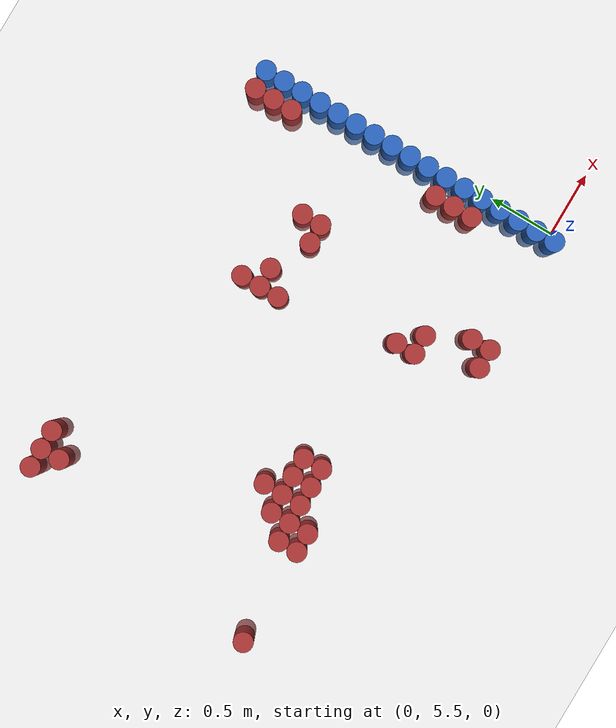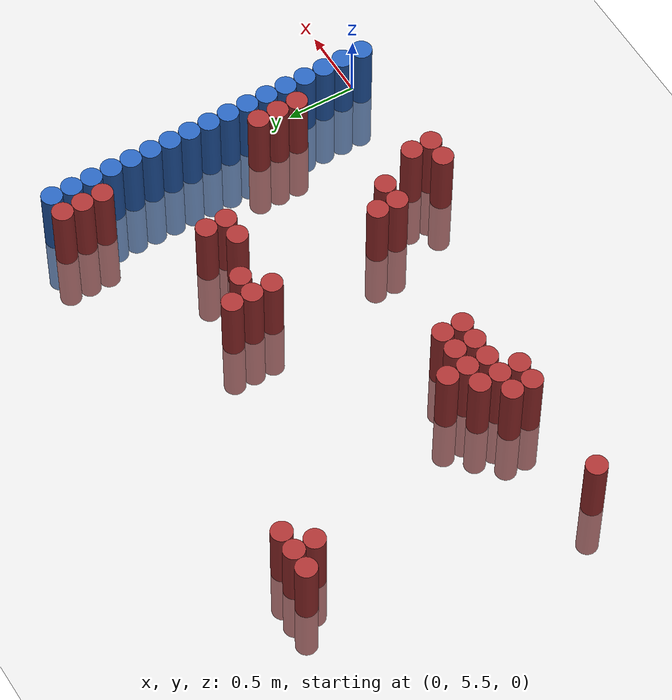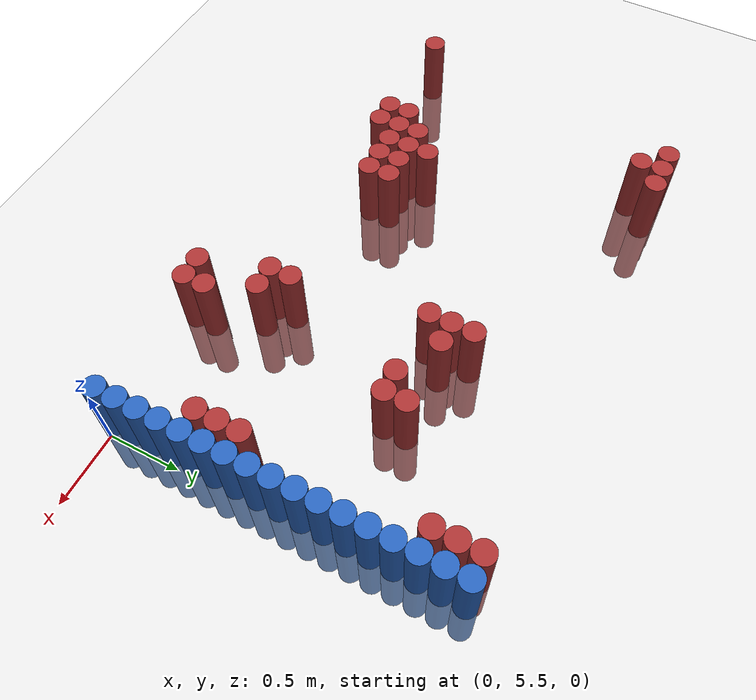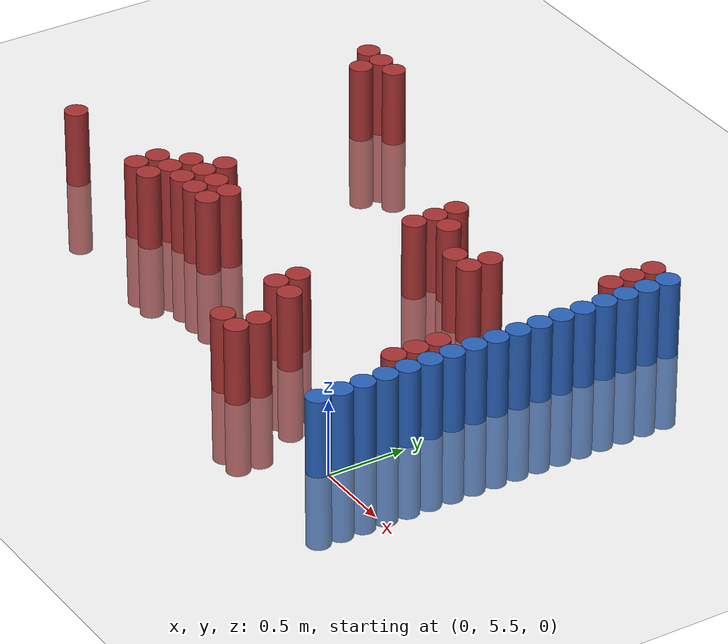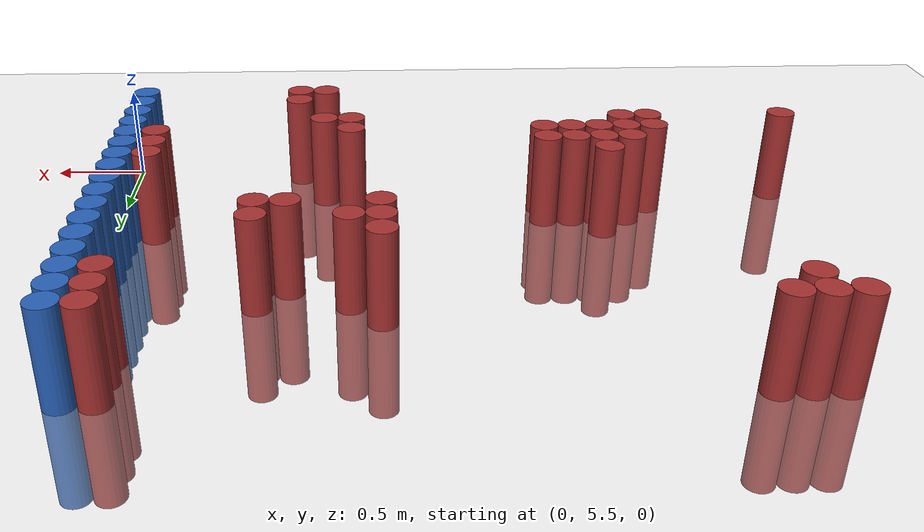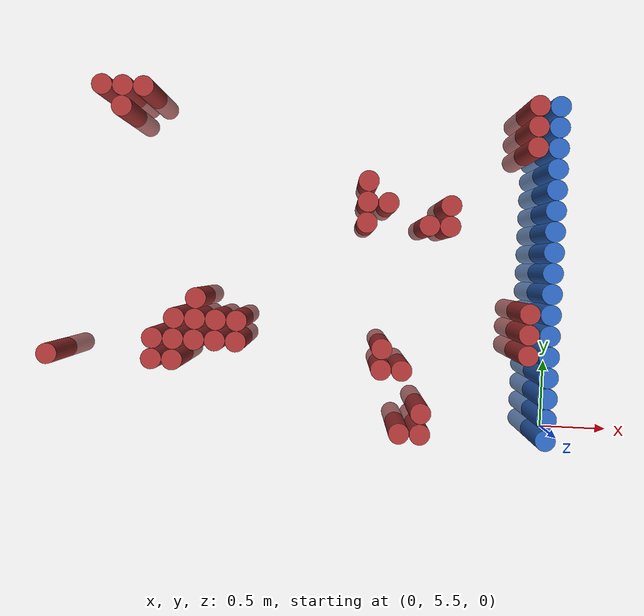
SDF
<sdf version="1.6">
 <world name="default">
  <model name="ground_plane">
   <static>1</static>
   <link name="link">
    <collision name="collision">
     <geometry><plane><normal>0 0 1</normal><size>100 100</size></plane></geometry>
     <surface><friction><ode><mu>100</mu><mu2>50</mu2></ode></friction></surface>
    </collision>
    <visual name="visual">
     <cast_shadows>0</cast_shadows>
     <geometry><plane><normal>0 0 1</normal><size>100 100</size></plane></geometry>
     <material>
      <script><uri>file://media/materials/scripts/gazebo.material</uri><name>Gazebo/Grey</name></script>
     </material>
    </visual>
   </link>
  </model>
  <model name="unit_cylinder_156">
   <static>1</static>
   <pose>-3.675000 5.925000 0.000000 0.000000 0.000000 0.000000</pose>
   <link name="link">
    <inertial>
     <mass>1</mass>
     <inertia><ixx>0.145833</ixx><ixy>0</ixy><ixz>0</ixz><iyy>0.145833</iyy><iyz>0</iyz><izz>0.125</izz></inertia>
    </inertial>
    <collision name="collision">
     <geometry><cylinder><radius>0.075000</radius><length>1</length></cylinder></geometry>
    </collision>
    <visual name="visual">
     <geometry><cylinder><radius>0.075000</radius><length>1</length></cylinder></geometry>
     <material>
      <ambient>0.648000 0.192000 0.192000 1</ambient>
      <diffuse>0.648000 0.192000 0.192000 1</diffuse>
     </material>
     <material>
      <script><name>Gazebo/Grey</name><uri>file://media/materials/scripts/gazebo.material</uri></script>
     </material>
    </visual>
   </link>
  </model>
  <model name="unit_cylinder_159">
   <static>1</static>
   <pose>-3.375000 7.875000 0.000000 0.000000 0.000000 0.000000</pose>
   <link name="link">
    <inertial>
     <mass>1</mass>
     <inertia><ixx>0.145833</ixx><ixy>0</ixy><ixz>0</ixz><iyy>0.145833</iyy><iyz>0</iyz><izz>0.125</izz></inertia>
    </inertial>
    <collision name="collision">
     <geometry><cylinder><radius>0.075000</radius><length>1</length></cylinder></geometry>
    </collision>
    <visual name="visual">
     <geometry><cylinder><radius>0.075000</radius><length>1</length></cylinder></geometry>
     <material>
      <ambient>0.648000 0.192000 0.192000 1</ambient>
      <diffuse>0.648000 0.192000 0.192000 1</diffuse>
     </material>
     <material>
      <script><name>Gazebo/Grey</name><uri>file://media/materials/scripts/gazebo.material</uri></script>
     </material>
    </visual>
   </link>
  </model>
  <model name="unit_cylinder_166">
   <static>1</static>
   <pose>-3.225000 7.725000 0.000000 0.000000 0.000000 0.000000</pose>
   <link name="link">
    <inertial>
     <mass>1</mass>
     <inertia><ixx>0.145833</ixx><ixy>0</ixy><ixz>0</ixz><iyy>0.145833</iyy><iyz>0</iyz><izz>0.125</izz></inertia>
    </inertial>
    <collision name="collision">
     <geometry><cylinder><radius>0.075000</radius><length>1</length></cylinder></geometry>
    </collision>
    <visual name="visual">
     <geometry><cylinder><radius>0.075000</radius><length>1</length></cylinder></geometry>
     <material>
      <ambient>0.648000 0.192000 0.192000 1</ambient>
      <diffuse>0.648000 0.192000 0.192000 1</diffuse>
     </material>
     <material>
      <script><name>Gazebo/Grey</name><uri>file://media/materials/scripts/gazebo.material</uri></script>
     </material>
    </visual>
   </link>
  </model>
  <model name="unit_cylinder_167">
   <static>1</static>
   <pose>-3.225000 7.875000 0.000000 0.000000 0.000000 0.000000</pose>
   <link name="link">
    <inertial>
     <mass>1</mass>
     <inertia><ixx>0.145833</ixx><ixy>0</ixy><ixz>0</ixz><iyy>0.145833</iyy><iyz>0</iyz><izz>0.125</izz></inertia>
    </inertial>
    <collision name="collision">
     <geometry><cylinder><radius>0.075000</radius><length>1</length></cylinder></geometry>
    </collision>
    <visual name="visual">
     <geometry><cylinder><radius>0.075000</radius><length>1</length></cylinder></geometry>
     <material>
      <ambient>0.648000 0.192000 0.192000 1</ambient>
      <diffuse>0.648000 0.192000 0.192000 1</diffuse>
     </material>
     <material>
      <script><name>Gazebo/Grey</name><uri>file://media/materials/scripts/gazebo.material</uri></script>
     </material>
    </visual>
   </link>
  </model>
  <model name="unit_cylinder_173">
   <static>1</static>
   <pose>-3.075000 7.875000 0.000000 0.000000 0.000000 0.000000</pose>
   <link name="link">
    <inertial>
     <mass>1</mass>
     <inertia><ixx>0.145833</ixx><ixy>0</ixy><ixz>0</ixz><iyy>0.145833</iyy><iyz>0</iyz><izz>0.125</izz></inertia>
    </inertial>
    <collision name="collision">
     <geometry><cylinder><radius>0.075000</radius><length>1</length></cylinder></geometry>
    </collision>
    <visual name="visual">
     <geometry><cylinder><radius>0.075000</radius><length>1</length></cylinder></geometry>
     <material>
      <ambient>0.648000 0.192000 0.192000 1</ambient>
      <diffuse>0.648000 0.192000 0.192000 1</diffuse>
     </material>
     <material>
      <script><name>Gazebo/Grey</name><uri>file://media/materials/scripts/gazebo.material</uri></script>
     </material>
    </visual>
   </link>
  </model>
  <model name="unit_cylinder_176">
   <static>1</static>
   <pose>-2.925000 5.925000 0.000000 0.000000 0.000000 0.000000</pose>
   <link name="link">
    <inertial>
     <mass>1</mass>
     <inertia><ixx>0.145833</ixx><ixy>0</ixy><ixz>0</ixz><iyy>0.145833</iyy><iyz>0</iyz><izz>0.125</izz></inertia>
    </inertial>
    <collision name="collision">
     <geometry><cylinder><radius>0.075000</radius><length>1</length></cylinder></geometry>
    </collision>
    <visual name="visual">
     <geometry><cylinder><radius>0.075000</radius><length>1</length></cylinder></geometry>
     <material>
      <ambient>0.648000 0.192000 0.192000 1</ambient>
      <diffuse>0.648000 0.192000 0.192000 1</diffuse>
     </material>
     <material>
      <script><name>Gazebo/Grey</name><uri>file://media/materials/scripts/gazebo.material</uri></script>
     </material>
    </visual>
   </link>
  </model>
  <model name="unit_cylinder_177">
   <static>1</static>
   <pose>-2.925000 6.075000 0.000000 0.000000 0.000000 0.000000</pose>
   <link name="link">
    <inertial>
     <mass>1</mass>
     <inertia><ixx>0.145833</ixx><ixy>0</ixy><ixz>0</ixz><iyy>0.145833</iyy><iyz>0</iyz><izz>0.125</izz></inertia>
    </inertial>
    <collision name="collision">
     <geometry><cylinder><radius>0.075000</radius><length>1</length></cylinder></geometry>
    </collision>
    <visual name="visual">
     <geometry><cylinder><radius>0.075000</radius><length>1</length></cylinder></geometry>
     <material>
      <ambient>0.648000 0.192000 0.192000 1</ambient>
      <diffuse>0.648000 0.192000 0.192000 1</diffuse>
     </material>
     <material>
      <script><name>Gazebo/Grey</name><uri>file://media/materials/scripts/gazebo.material</uri></script>
     </material>
    </visual>
   </link>
  </model>
  <model name="unit_cylinder_180">
   <static>1</static>
   <pose>-2.775000 5.925000 0.000000 0.000000 0.000000 0.000000</pose>
   <link name="link">
    <inertial>
     <mass>1</mass>
     <inertia><ixx>0.145833</ixx><ixy>0</ixy><ixz>0</ixz><iyy>0.145833</iyy><iyz>0</iyz><izz>0.125</izz></inertia>
    </inertial>
    <collision name="collision">
     <geometry><cylinder><radius>0.075000</radius><length>1</length></cylinder></geometry>
    </collision>
    <visual name="visual">
     <geometry><cylinder><radius>0.075000</radius><length>1</length></cylinder></geometry>
     <material>
      <ambient>0.648000 0.192000 0.192000 1</ambient>
      <diffuse>0.648000 0.192000 0.192000 1</diffuse>
     </material>
     <material>
      <script><name>Gazebo/Grey</name><uri>file://media/materials/scripts/gazebo.material</uri></script>
     </material>
    </visual>
   </link>
  </model>
  <model name="unit_cylinder_181">
   <static>1</static>
   <pose>-2.775000 6.075000 0.000000 0.000000 0.000000 0.000000</pose>
   <link name="link">
    <inertial>
     <mass>1</mass>
     <inertia><ixx>0.145833</ixx><ixy>0</ixy><ixz>0</ixz><iyy>0.145833</iyy><iyz>0</iyz><izz>0.125</izz></inertia>
    </inertial>
    <collision name="collision">
     <geometry><cylinder><radius>0.075000</radius><length>1</length></cylinder></geometry>
    </collision>
    <visual name="visual">
     <geometry><cylinder><radius>0.075000</radius><length>1</length></cylinder></geometry>
     <material>
      <ambient>0.648000 0.192000 0.192000 1</ambient>
      <diffuse>0.648000 0.192000 0.192000 1</diffuse>
     </material>
     <material>
      <script><name>Gazebo/Grey</name><uri>file://media/materials/scripts/gazebo.material</uri></script>
     </material>
    </visual>
   </link>
  </model>
  <model name="unit_cylinder_182">
   <static>1</static>
   <pose>-2.775000 6.225000 0.000000 0.000000 0.000000 0.000000</pose>
   <link name="link">
    <inertial>
     <mass>1</mass>
     <inertia><ixx>0.145833</ixx><ixy>0</ixy><ixz>0</ixz><iyy>0.145833</iyy><iyz>0</iyz><izz>0.125</izz></inertia>
    </inertial>
    <collision name="collision">
     <geometry><cylinder><radius>0.075000</radius><length>1</length></cylinder></geometry>
    </collision>
    <visual name="visual">
     <geometry><cylinder><radius>0.075000</radius><length>1</length></cylinder></geometry>
     <material>
      <ambient>0.648000 0.192000 0.192000 1</ambient>
      <diffuse>0.648000 0.192000 0.192000 1</diffuse>
     </material>
     <material>
      <script><name>Gazebo/Grey</name><uri>file://media/materials/scripts/gazebo.material</uri></script>
     </material>
    </visual>
   </link>
  </model>
  <model name="unit_cylinder_183">
   <static>1</static>
   <pose>-2.625000 6.075000 0.000000 0.000000 0.000000 0.000000</pose>
   <link name="link">
    <inertial>
     <mass>1</mass>
     <inertia><ixx>0.145833</ixx><ixy>0</ixy><ixz>0</ixz><iyy>0.145833</iyy><iyz>0</iyz><izz>0.125</izz></inertia>
    </inertial>
    <collision name="collision">
     <geometry><cylinder><radius>0.075000</radius><length>1</length></cylinder></geometry>
    </collision>
    <visual name="visual">
     <geometry><cylinder><radius>0.075000</radius><length>1</length></cylinder></geometry>
     <material>
      <ambient>0.648000 0.192000 0.192000 1</ambient>
      <diffuse>0.648000 0.192000 0.192000 1</diffuse>
     </material>
     <material>
      <script><name>Gazebo/Grey</name><uri>file://media/materials/scripts/gazebo.material</uri></script>
     </material>
    </visual>
   </link>
  </model>
  <model name="unit_cylinder_184">
   <static>1</static>
   <pose>-2.625000 6.225000 0.000000 0.000000 0.000000 0.000000</pose>
   <link name="link">
    <inertial>
     <mass>1</mass>
     <inertia><ixx>0.145833</ixx><ixy>0</ixy><ixz>0</ixz><iyy>0.145833</iyy><iyz>0</iyz><izz>0.125</izz></inertia>
    </inertial>
    <collision name="collision">
     <geometry><cylinder><radius>0.075000</radius><length>1</length></cylinder></geometry>
    </collision>
    <visual name="visual">
     <geometry><cylinder><radius>0.075000</radius><length>1</length></cylinder></geometry>
     <material>
      <ambient>0.648000 0.192000 0.192000 1</ambient>
      <diffuse>0.648000 0.192000 0.192000 1</diffuse>
     </material>
     <material>
      <script><name>Gazebo/Grey</name><uri>file://media/materials/scripts/gazebo.material</uri></script>
     </material>
    </visual>
   </link>
  </model>
  <model name="unit_cylinder_185">
   <static>1</static>
   <pose>-2.625000 6.375000 0.000000 0.000000 0.000000 0.000000</pose>
   <link name="link">
    <inertial>
     <mass>1</mass>
     <inertia><ixx>0.145833</ixx><ixy>0</ixy><ixz>0</ixz><iyy>0.145833</iyy><iyz>0</iyz><izz>0.125</izz></inertia>
    </inertial>
    <collision name="collision">
     <geometry><cylinder><radius>0.075000</radius><length>1</length></cylinder></geometry>
    </collision>
    <visual name="visual">
     <geometry><cylinder><radius>0.075000</radius><length>1</length></cylinder></geometry>
     <material>
      <ambient>0.648000 0.192000 0.192000 1</ambient>
      <diffuse>0.648000 0.192000 0.192000 1</diffuse>
     </material>
     <material>
      <script><name>Gazebo/Grey</name><uri>file://media/materials/scripts/gazebo.material</uri></script>
     </material>
    </visual>
   </link>
  </model>
  <model name="unit_cylinder_186">
   <static>1</static>
   <pose>-2.475000 6.075000 0.000000 0.000000 0.000000 0.000000</pose>
   <link name="link">
    <inertial>
     <mass>1</mass>
     <inertia><ixx>0.145833</ixx><ixy>0</ixy><ixz>0</ixz><iyy>0.145833</iyy><iyz>0</iyz><izz>0.125</izz></inertia>
    </inertial>
    <collision name="collision">
     <geometry><cylinder><radius>0.075000</radius><length>1</length></cylinder></geometry>
    </collision>
    <visual name="visual">
     <geometry><cylinder><radius>0.075000</radius><length>1</length></cylinder></geometry>
     <material>
      <ambient>0.648000 0.192000 0.192000 1</ambient>
      <diffuse>0.648000 0.192000 0.192000 1</diffuse>
     </material>
     <material>
      <script><name>Gazebo/Grey</name><uri>file://media/materials/scripts/gazebo.material</uri></script>
     </material>
    </visual>
   </link>
  </model>
  <model name="unit_cylinder_187">
   <static>1</static>
   <pose>-2.475000 6.225000 0.000000 0.000000 0.000000 0.000000</pose>
   <link name="link">
    <inertial>
     <mass>1</mass>
     <inertia><ixx>0.145833</ixx><ixy>0</ixy><ixz>0</ixz><iyy>0.145833</iyy><iyz>0</iyz><izz>0.125</izz></inertia>
    </inertial>
    <collision name="collision">
     <geometry><cylinder><radius>0.075000</radius><length>1</length></cylinder></geometry>
    </collision>
    <visual name="visual">
     <geometry><cylinder><radius>0.075000</radius><length>1</length></cylinder></geometry>
     <material>
      <ambient>0.648000 0.192000 0.192000 1</ambient>
      <diffuse>0.648000 0.192000 0.192000 1</diffuse>
     </material>
     <material>
      <script><name>Gazebo/Grey</name><uri>file://media/materials/scripts/gazebo.material</uri></script>
     </material>
    </visual>
   </link>
  </model>
  <model name="unit_cylinder_188">
   <static>1</static>
   <pose>-2.325000 6.075000 0.000000 0.000000 0.000000 0.000000</pose>
   <link name="link">
    <inertial>
     <mass>1</mass>
     <inertia><ixx>0.145833</ixx><ixy>0</ixy><ixz>0</ixz><iyy>0.145833</iyy><iyz>0</iyz><izz>0.125</izz></inertia>
    </inertial>
    <collision name="collision">
     <geometry><cylinder><radius>0.075000</radius><length>1</length></cylinder></geometry>
    </collision>
    <visual name="visual">
     <geometry><cylinder><radius>0.075000</radius><length>1</length></cylinder></geometry>
     <material>
      <ambient>0.648000 0.192000 0.192000 1</ambient>
      <diffuse>0.648000 0.192000 0.192000 1</diffuse>
     </material>
     <material>
      <script><name>Gazebo/Grey</name><uri>file://media/materials/scripts/gazebo.material</uri></script>
     </material>
    </visual>
   </link>
  </model>
  <model name="unit_cylinder_189">
   <static>1</static>
   <pose>-2.325000 6.225000 0.000000 0.000000 0.000000 0.000000</pose>
   <link name="link">
    <inertial>
     <mass>1</mass>
     <inertia><ixx>0.145833</ixx><ixy>0</ixy><ixz>0</ixz><iyy>0.145833</iyy><iyz>0</iyz><izz>0.125</izz></inertia>
    </inertial>
    <collision name="collision">
     <geometry><cylinder><radius>0.075000</radius><length>1</length></cylinder></geometry>
    </collision>
    <visual name="visual">
     <geometry><cylinder><radius>0.075000</radius><length>1</length></cylinder></geometry>
     <material>
      <ambient>0.648000 0.192000 0.192000 1</ambient>
      <diffuse>0.648000 0.192000 0.192000 1</diffuse>
     </material>
     <material>
      <script><name>Gazebo/Grey</name><uri>file://media/materials/scripts/gazebo.material</uri></script>
     </material>
    </visual>
   </link>
  </model>
  <model name="unit_cylinder_202">
   <static>1</static>
   <pose>-1.425000 6.975000 0.000000 0.000000 0.000000 0.000000</pose>
   <link name="link">
    <inertial>
     <mass>1</mass>
     <inertia><ixx>0.145833</ixx><ixy>0</ixy><ixz>0</ixz><iyy>0.145833</iyy><iyz>0</iyz><izz>0.125</izz></inertia>
    </inertial>
    <collision name="collision">
     <geometry><cylinder><radius>0.075000</radius><length>1</length></cylinder></geometry>
    </collision>
    <visual name="visual">
     <geometry><cylinder><radius>0.075000</radius><length>1</length></cylinder></geometry>
     <material>
      <ambient>0.648000 0.192000 0.192000 1</ambient>
      <diffuse>0.648000 0.192000 0.192000 1</diffuse>
     </material>
     <material>
      <script><name>Gazebo/Grey</name><uri>file://media/materials/scripts/gazebo.material</uri></script>
     </material>
    </visual>
   </link>
  </model>
  <model name="unit_cylinder_203">
   <static>1</static>
   <pose>-1.425000 7.125000 0.000000 0.000000 0.000000 0.000000</pose>
   <link name="link">
    <inertial>
     <mass>1</mass>
     <inertia><ixx>0.145833</ixx><ixy>0</ixy><ixz>0</ixz><iyy>0.145833</iyy><iyz>0</iyz><izz>0.125</izz></inertia>
    </inertial>
    <collision name="collision">
     <geometry><cylinder><radius>0.075000</radius><length>1</length></cylinder></geometry>
    </collision>
    <visual name="visual">
     <geometry><cylinder><radius>0.075000</radius><length>1</length></cylinder></geometry>
     <material>
      <ambient>0.648000 0.192000 0.192000 1</ambient>
      <diffuse>0.648000 0.192000 0.192000 1</diffuse>
     </material>
     <material>
      <script><name>Gazebo/Grey</name><uri>file://media/materials/scripts/gazebo.material</uri></script>
     </material>
    </visual>
   </link>
  </model>
  <model name="unit_cylinder_204">
   <static>1</static>
   <pose>-1.425000 7.275000 0.000000 0.000000 0.000000 0.000000</pose>
   <link name="link">
    <inertial>
     <mass>1</mass>
     <inertia><ixx>0.145833</ixx><ixy>0</ixy><ixz>0</ixz><iyy>0.145833</iyy><iyz>0</iyz><izz>0.125</izz></inertia>
    </inertial>
    <collision name="collision">
     <geometry><cylinder><radius>0.075000</radius><length>1</length></cylinder></geometry>
    </collision>
    <visual name="visual">
     <geometry><cylinder><radius>0.075000</radius><length>1</length></cylinder></geometry>
     <material>
      <ambient>0.648000 0.192000 0.192000 1</ambient>
      <diffuse>0.648000 0.192000 0.192000 1</diffuse>
     </material>
     <material>
      <script><name>Gazebo/Grey</name><uri>file://media/materials/scripts/gazebo.material</uri></script>
     </material>
    </visual>
   </link>
  </model>
  <model name="unit_cylinder_205">
   <static>1</static>
   <pose>-1.275000 5.925000 0.000000 0.000000 0.000000 0.000000</pose>
   <link name="link">
    <inertial>
     <mass>1</mass>
     <inertia><ixx>0.145833</ixx><ixy>0</ixy><ixz>0</ixz><iyy>0.145833</iyy><iyz>0</iyz><izz>0.125</izz></inertia>
    </inertial>
    <collision name="collision">
     <geometry><cylinder><radius>0.075000</radius><length>1</length></cylinder></geometry>
    </collision>
    <visual name="visual">
     <geometry><cylinder><radius>0.075000</radius><length>1</length></cylinder></geometry>
     <material>
      <ambient>0.648000 0.192000 0.192000 1</ambient>
      <diffuse>0.648000 0.192000 0.192000 1</diffuse>
     </material>
     <material>
      <script><name>Gazebo/Grey</name><uri>file://media/materials/scripts/gazebo.material</uri></script>
     </material>
    </visual>
   </link>
  </model>
  <model name="unit_cylinder_206">
   <static>1</static>
   <pose>-1.275000 6.075000 0.000000 0.000000 0.000000 0.000000</pose>
   <link name="link">
    <inertial>
     <mass>1</mass>
     <inertia><ixx>0.145833</ixx><ixy>0</ixy><ixz>0</ixz><iyy>0.145833</iyy><iyz>0</iyz><izz>0.125</izz></inertia>
    </inertial>
    <collision name="collision">
     <geometry><cylinder><radius>0.075000</radius><length>1</length></cylinder></geometry>
    </collision>
    <visual name="visual">
     <geometry><cylinder><radius>0.075000</radius><length>1</length></cylinder></geometry>
     <material>
      <ambient>0.648000 0.192000 0.192000 1</ambient>
      <diffuse>0.648000 0.192000 0.192000 1</diffuse>
     </material>
     <material>
      <script><name>Gazebo/Grey</name><uri>file://media/materials/scripts/gazebo.material</uri></script>
     </material>
    </visual>
   </link>
  </model>
  <model name="unit_cylinder_207">
   <static>1</static>
   <pose>-1.275000 7.125000 0.000000 0.000000 0.000000 0.000000</pose>
   <link name="link">
    <inertial>
     <mass>1</mass>
     <inertia><ixx>0.145833</ixx><ixy>0</ixy><ixz>0</ixz><iyy>0.145833</iyy><iyz>0</iyz><izz>0.125</izz></inertia>
    </inertial>
    <collision name="collision">
     <geometry><cylinder><radius>0.075000</radius><length>1</length></cylinder></geometry>
    </collision>
    <visual name="visual">
     <geometry><cylinder><radius>0.075000</radius><length>1</length></cylinder></geometry>
     <material>
      <ambient>0.648000 0.192000 0.192000 1</ambient>
      <diffuse>0.648000 0.192000 0.192000 1</diffuse>
     </material>
     <material>
      <script><name>Gazebo/Grey</name><uri>file://media/materials/scripts/gazebo.material</uri></script>
     </material>
    </visual>
   </link>
  </model>
  <model name="unit_cylinder_208">
   <static>1</static>
   <pose>-1.125000 5.475000 0.000000 0.000000 0.000000 0.000000</pose>
   <link name="link">
    <inertial>
     <mass>1</mass>
     <inertia><ixx>0.145833</ixx><ixy>0</ixy><ixz>0</ixz><iyy>0.145833</iyy><iyz>0</iyz><izz>0.125</izz></inertia>
    </inertial>
    <collision name="collision">
     <geometry><cylinder><radius>0.075000</radius><length>1</length></cylinder></geometry>
    </collision>
    <visual name="visual">
     <geometry><cylinder><radius>0.075000</radius><length>1</length></cylinder></geometry>
     <material>
      <ambient>0.648000 0.192000 0.192000 1</ambient>
      <diffuse>0.648000 0.192000 0.192000 1</diffuse>
     </material>
     <material>
      <script><name>Gazebo/Grey</name><uri>file://media/materials/scripts/gazebo.material</uri></script>
     </material>
    </visual>
   </link>
  </model>
  <model name="unit_cylinder_209">
   <static>1</static>
   <pose>-1.125000 5.925000 0.000000 0.000000 0.000000 0.000000</pose>
   <link name="link">
    <inertial>
     <mass>1</mass>
     <inertia><ixx>0.145833</ixx><ixy>0</ixy><ixz>0</ixz><iyy>0.145833</iyy><iyz>0</iyz><izz>0.125</izz></inertia>
    </inertial>
    <collision name="collision">
     <geometry><cylinder><radius>0.075000</radius><length>1</length></cylinder></geometry>
    </collision>
    <visual name="visual">
     <geometry><cylinder><radius>0.075000</radius><length>1</length></cylinder></geometry>
     <material>
      <ambient>0.648000 0.192000 0.192000 1</ambient>
      <diffuse>0.648000 0.192000 0.192000 1</diffuse>
     </material>
     <material>
      <script><name>Gazebo/Grey</name><uri>file://media/materials/scripts/gazebo.material</uri></script>
     </material>
    </visual>
   </link>
  </model>
  <model name="unit_cylinder_210">
   <static>1</static>
   <pose>-0.975000 5.475000 0.000000 0.000000 0.000000 0.000000</pose>
   <link name="link">
    <inertial>
     <mass>1</mass>
     <inertia><ixx>0.145833</ixx><ixy>0</ixy><ixz>0</ixz><iyy>0.145833</iyy><iyz>0</iyz><izz>0.125</izz></inertia>
    </inertial>
    <collision name="collision">
     <geometry><cylinder><radius>0.075000</radius><length>1</length></cylinder></geometry>
    </collision>
    <visual name="visual">
     <geometry><cylinder><radius>0.075000</radius><length>1</length></cylinder></geometry>
     <material>
      <ambient>0.648000 0.192000 0.192000 1</ambient>
      <diffuse>0.648000 0.192000 0.192000 1</diffuse>
     </material>
     <material>
      <script><name>Gazebo/Grey</name><uri>file://media/materials/scripts/gazebo.material</uri></script>
     </material>
    </visual>
   </link>
  </model>
  <model name="unit_cylinder_211">
   <static>1</static>
   <pose>-0.975000 5.625000 0.000000 0.000000 0.000000 0.000000</pose>
   <link name="link">
    <inertial>
     <mass>1</mass>
     <inertia><ixx>0.145833</ixx><ixy>0</ixy><ixz>0</ixz><iyy>0.145833</iyy><iyz>0</iyz><izz>0.125</izz></inertia>
    </inertial>
    <collision name="collision">
     <geometry><cylinder><radius>0.075000</radius><length>1</length></cylinder></geometry>
    </collision>
    <visual name="visual">
     <geometry><cylinder><radius>0.075000</radius><length>1</length></cylinder></geometry>
     <material>
      <ambient>0.648000 0.192000 0.192000 1</ambient>
      <diffuse>0.648000 0.192000 0.192000 1</diffuse>
     </material>
     <material>
      <script><name>Gazebo/Grey</name><uri>file://media/materials/scripts/gazebo.material</uri></script>
     </material>
    </visual>
   </link>
  </model>
  <model name="unit_cylinder_212">
   <static>1</static>
   <pose>-0.975000 6.975000 0.000000 0.000000 0.000000 0.000000</pose>
   <link name="link">
    <inertial>
     <mass>1</mass>
     <inertia><ixx>0.145833</ixx><ixy>0</ixy><ixz>0</ixz><iyy>0.145833</iyy><iyz>0</iyz><izz>0.125</izz></inertia>
    </inertial>
    <collision name="collision">
     <geometry><cylinder><radius>0.075000</radius><length>1</length></cylinder></geometry>
    </collision>
    <visual name="visual">
     <geometry><cylinder><radius>0.075000</radius><length>1</length></cylinder></geometry>
     <material>
      <ambient>0.648000 0.192000 0.192000 1</ambient>
      <diffuse>0.648000 0.192000 0.192000 1</diffuse>
     </material>
     <material>
      <script><name>Gazebo/Grey</name><uri>file://media/materials/scripts/gazebo.material</uri></script>
     </material>
    </visual>
   </link>
  </model>
  <model name="unit_cylinder_214">
   <static>1</static>
   <pose>-0.825000 6.975000 0.000000 0.000000 0.000000 0.000000</pose>
   <link name="link">
    <inertial>
     <mass>1</mass>
     <inertia><ixx>0.145833</ixx><ixy>0</ixy><ixz>0</ixz><iyy>0.145833</iyy><iyz>0</iyz><izz>0.125</izz></inertia>
    </inertial>
    <collision name="collision">
     <geometry><cylinder><radius>0.075000</radius><length>1</length></cylinder></geometry>
    </collision>
    <visual name="visual">
     <geometry><cylinder><radius>0.075000</radius><length>1</length></cylinder></geometry>
     <material>
      <ambient>0.648000 0.192000 0.192000 1</ambient>
      <diffuse>0.648000 0.192000 0.192000 1</diffuse>
     </material>
     <material>
      <script><name>Gazebo/Grey</name><uri>file://media/materials/scripts/gazebo.material</uri></script>
     </material>
    </visual>
   </link>
  </model>
  <model name="unit_cylinder_215">
   <static>1</static>
   <pose>-0.825000 7.125000 0.000000 0.000000 0.000000 0.000000</pose>
   <link name="link">
    <inertial>
     <mass>1</mass>
     <inertia><ixx>0.145833</ixx><ixy>0</ixy><ixz>0</ixz><iyy>0.145833</iyy><iyz>0</iyz><izz>0.125</izz></inertia>
    </inertial>
    <collision name="collision">
     <geometry><cylinder><radius>0.075000</radius><length>1</length></cylinder></geometry>
    </collision>
    <visual name="visual">
     <geometry><cylinder><radius>0.075000</radius><length>1</length></cylinder></geometry>
     <material>
      <ambient>0.648000 0.192000 0.192000 1</ambient>
      <diffuse>0.648000 0.192000 0.192000 1</diffuse>
     </material>
     <material>
      <script><name>Gazebo/Grey</name><uri>file://media/materials/scripts/gazebo.material</uri></script>
     </material>
    </visual>
   </link>
  </model>
  <model name="unit_cylinder_226">
   <static>1</static>
   <pose>-0.225000 6.075000 0.000000 0.000000 0.000000 0.000000</pose>
   <link name="link">
    <inertial>
     <mass>1</mass>
     <inertia><ixx>0.145833</ixx><ixy>0</ixy><ixz>0</ixz><iyy>0.145833</iyy><iyz>0</iyz><izz>0.125</izz></inertia>
    </inertial>
    <collision name="collision">
     <geometry><cylinder><radius>0.075000</radius><length>1</length></cylinder></geometry>
    </collision>
    <visual name="visual">
     <geometry><cylinder><radius>0.075000</radius><length>1</length></cylinder></geometry>
     <material>
      <ambient>0.648000 0.192000 0.192000 1</ambient>
      <diffuse>0.648000 0.192000 0.192000 1</diffuse>
     </material>
     <material>
      <script><name>Gazebo/Grey</name><uri>file://media/materials/scripts/gazebo.material</uri></script>
     </material>
    </visual>
   </link>
  </model>
  <model name="unit_cylinder_227">
   <static>1</static>
   <pose>-0.225000 6.225000 0.000000 0.000000 0.000000 0.000000</pose>
   <link name="link">
    <inertial>
     <mass>1</mass>
     <inertia><ixx>0.145833</ixx><ixy>0</ixy><ixz>0</ixz><iyy>0.145833</iyy><iyz>0</iyz><izz>0.125</izz></inertia>
    </inertial>
    <collision name="collision">
     <geometry><cylinder><radius>0.075000</radius><length>1</length></cylinder></geometry>
    </collision>
    <visual name="visual">
     <geometry><cylinder><radius>0.075000</radius><length>1</length></cylinder></geometry>
     <material>
      <ambient>0.648000 0.192000 0.192000 1</ambient>
      <diffuse>0.648000 0.192000 0.192000 1</diffuse>
     </material>
     <material>
      <script><name>Gazebo/Grey</name><uri>file://media/materials/scripts/gazebo.material</uri></script>
     </material>
    </visual>
   </link>
  </model>
  <model name="unit_cylinder_228">
   <static>1</static>
   <pose>-0.225000 6.375000 0.000000 0.000000 0.000000 0.000000</pose>
   <link name="link">
    <inertial>
     <mass>1</mass>
     <inertia><ixx>0.145833</ixx><ixy>0</ixy><ixz>0</ixz><iyy>0.145833</iyy><iyz>0</iyz><izz>0.125</izz></inertia>
    </inertial>
    <collision name="collision">
     <geometry><cylinder><radius>0.075000</radius><length>1</length></cylinder></geometry>
    </collision>
    <visual name="visual">
     <geometry><cylinder><radius>0.075000</radius><length>1</length></cylinder></geometry>
     <material>
      <ambient>0.648000 0.192000 0.192000 1</ambient>
      <diffuse>0.648000 0.192000 0.192000 1</diffuse>
     </material>
     <material>
      <script><name>Gazebo/Grey</name><uri>file://media/materials/scripts/gazebo.material</uri></script>
     </material>
    </visual>
   </link>
  </model>
  <model name="unit_cylinder_229">
   <static>1</static>
   <pose>-0.225000 7.575000 0.000000 0.000000 0.000000 0.000000</pose>
   <link name="link">
    <inertial>
     <mass>1</mass>
     <inertia><ixx>0.145833</ixx><ixy>0</ixy><ixz>0</ixz><iyy>0.145833</iyy><iyz>0</iyz><izz>0.125</izz></inertia>
    </inertial>
    <collision name="collision">
     <geometry><cylinder><radius>0.075000</radius><length>1</length></cylinder></geometry>
    </collision>
    <visual name="visual">
     <geometry><cylinder><radius>0.075000</radius><length>1</length></cylinder></geometry>
     <material>
      <ambient>0.648000 0.192000 0.192000 1</ambient>
      <diffuse>0.648000 0.192000 0.192000 1</diffuse>
     </material>
     <material>
      <script><name>Gazebo/Grey</name><uri>file://media/materials/scripts/gazebo.material</uri></script>
     </material>
    </visual>
   </link>
  </model>
  <model name="unit_cylinder_230">
   <static>1</static>
   <pose>-0.225000 7.725000 0.000000 0.000000 0.000000 0.000000</pose>
   <link name="link">
    <inertial>
     <mass>1</mass>
     <inertia><ixx>0.145833</ixx><ixy>0</ixy><ixz>0</ixz><iyy>0.145833</iyy><iyz>0</iyz><izz>0.125</izz></inertia>
    </inertial>
    <collision name="collision">
     <geometry><cylinder><radius>0.075000</radius><length>1</length></cylinder></geometry>
    </collision>
    <visual name="visual">
     <geometry><cylinder><radius>0.075000</radius><length>1</length></cylinder></geometry>
     <material>
      <ambient>0.648000 0.192000 0.192000 1</ambient>
      <diffuse>0.648000 0.192000 0.192000 1</diffuse>
     </material>
     <material>
      <script><name>Gazebo/Grey</name><uri>file://media/materials/scripts/gazebo.material</uri></script>
     </material>
    </visual>
   </link>
  </model>
  <model name="unit_cylinder_231">
   <static>1</static>
   <pose>-0.225000 7.875000 0.000000 0.000000 0.000000 0.000000</pose>
   <link name="link">
    <inertial>
     <mass>1</mass>
     <inertia><ixx>0.145833</ixx><ixy>0</ixy><ixz>0</ixz><iyy>0.145833</iyy><iyz>0</iyz><izz>0.125</izz></inertia>
    </inertial>
    <collision name="collision">
     <geometry><cylinder><radius>0.075000</radius><length>1</length></cylinder></geometry>
    </collision>
    <visual name="visual">
     <geometry><cylinder><radius>0.075000</radius><length>1</length></cylinder></geometry>
     <material>
      <ambient>0.648000 0.192000 0.192000 1</ambient>
      <diffuse>0.648000 0.192000 0.192000 1</diffuse>
     </material>
     <material>
      <script><name>Gazebo/Grey</name><uri>file://media/materials/scripts/gazebo.material</uri></script>
     </material>
    </visual>
   </link>
  </model>
  <model name="unit_cylinder_239">
   <static>1</static>
   <pose>-0.075000 5.475000 0.000000 0.000000 0.000000 0.000000</pose>
   <link name="link">
    <inertial>
     <mass>1</mass>
     <inertia><ixx>0.145833</ixx><ixy>0</ixy><ixz>0</ixz><iyy>0.145833</iyy><iyz>0</iyz><izz>0.125</izz></inertia>
    </inertial>
    <collision name="collision">
     <geometry><cylinder><radius>0.075000</radius><length>1</length></cylinder></geometry>
    </collision>
    <visual name="visual">
     <geometry><cylinder><radius>0.075000</radius><length>1</length></cylinder></geometry>
     <material>
      <ambient>0.152000 0.379000 0.720000 1</ambient>
      <diffuse>0.152000 0.379000 0.720000 1</diffuse>
     </material>
     <material>
      <script><name>Gazebo/Grey</name><uri>file://media/materials/scripts/gazebo.material</uri></script>
     </material>
    </visual>
   </link>
  </model>
  <model name="unit_cylinder_240">
   <static>1</static>
   <pose>-0.075000 5.625000 0.000000 0.000000 0.000000 0.000000</pose>
   <link name="link">
    <inertial>
     <mass>1</mass>
     <inertia><ixx>0.145833</ixx><ixy>0</ixy><ixz>0</ixz><iyy>0.145833</iyy><iyz>0</iyz><izz>0.125</izz></inertia>
    </inertial>
    <collision name="collision">
     <geometry><cylinder><radius>0.075000</radius><length>1</length></cylinder></geometry>
    </collision>
    <visual name="visual">
     <geometry><cylinder><radius>0.075000</radius><length>1</length></cylinder></geometry>
     <material>
      <ambient>0.152000 0.379000 0.720000 1</ambient>
      <diffuse>0.152000 0.379000 0.720000 1</diffuse>
     </material>
     <material>
      <script><name>Gazebo/Grey</name><uri>file://media/materials/scripts/gazebo.material</uri></script>
     </material>
    </visual>
   </link>
  </model>
  <model name="unit_cylinder_241">
   <static>1</static>
   <pose>-0.075000 5.775000 0.000000 0.000000 0.000000 0.000000</pose>
   <link name="link">
    <inertial>
     <mass>1</mass>
     <inertia><ixx>0.145833</ixx><ixy>0</ixy><ixz>0</ixz><iyy>0.145833</iyy><iyz>0</iyz><izz>0.125</izz></inertia>
    </inertial>
    <collision name="collision">
     <geometry><cylinder><radius>0.075000</radius><length>1</length></cylinder></geometry>
    </collision>
    <visual name="visual">
     <geometry><cylinder><radius>0.075000</radius><length>1</length></cylinder></geometry>
     <material>
      <ambient>0.152000 0.379000 0.720000 1</ambient>
      <diffuse>0.152000 0.379000 0.720000 1</diffuse>
     </material>
     <material>
      <script><name>Gazebo/Grey</name><uri>file://media/materials/scripts/gazebo.material</uri></script>
     </material>
    </visual>
   </link>
  </model>
  <model name="unit_cylinder_242">
   <static>1</static>
   <pose>-0.075000 5.925000 0.000000 0.000000 0.000000 0.000000</pose>
   <link name="link">
    <inertial>
     <mass>1</mass>
     <inertia><ixx>0.145833</ixx><ixy>0</ixy><ixz>0</ixz><iyy>0.145833</iyy><iyz>0</iyz><izz>0.125</izz></inertia>
    </inertial>
    <collision name="collision">
     <geometry><cylinder><radius>0.075000</radius><length>1</length></cylinder></geometry>
    </collision>
    <visual name="visual">
     <geometry><cylinder><radius>0.075000</radius><length>1</length></cylinder></geometry>
     <material>
      <ambient>0.152000 0.379000 0.720000 1</ambient>
      <diffuse>0.152000 0.379000 0.720000 1</diffuse>
     </material>
     <material>
      <script><name>Gazebo/Grey</name><uri>file://media/materials/scripts/gazebo.material</uri></script>
     </material>
    </visual>
   </link>
  </model>
  <model name="unit_cylinder_243">
   <static>1</static>
   <pose>-0.075000 6.075000 0.000000 0.000000 0.000000 0.000000</pose>
   <link name="link">
    <inertial>
     <mass>1</mass>
     <inertia><ixx>0.145833</ixx><ixy>0</ixy><ixz>0</ixz><iyy>0.145833</iyy><iyz>0</iyz><izz>0.125</izz></inertia>
    </inertial>
    <collision name="collision">
     <geometry><cylinder><radius>0.075000</radius><length>1</length></cylinder></geometry>
    </collision>
    <visual name="visual">
     <geometry><cylinder><radius>0.075000</radius><length>1</length></cylinder></geometry>
     <material>
      <ambient>0.152000 0.379000 0.720000 1</ambient>
      <diffuse>0.152000 0.379000 0.720000 1</diffuse>
     </material>
     <material>
      <script><name>Gazebo/Grey</name><uri>file://media/materials/scripts/gazebo.material</uri></script>
     </material>
    </visual>
   </link>
  </model>
  <model name="unit_cylinder_244">
   <static>1</static>
   <pose>-0.075000 6.225000 0.000000 0.000000 0.000000 0.000000</pose>
   <link name="link">
    <inertial>
     <mass>1</mass>
     <inertia><ixx>0.145833</ixx><ixy>0</ixy><ixz>0</ixz><iyy>0.145833</iyy><iyz>0</iyz><izz>0.125</izz></inertia>
    </inertial>
    <collision name="collision">
     <geometry><cylinder><radius>0.075000</radius><length>1</length></cylinder></geometry>
    </collision>
    <visual name="visual">
     <geometry><cylinder><radius>0.075000</radius><length>1</length></cylinder></geometry>
     <material>
      <ambient>0.152000 0.379000 0.720000 1</ambient>
      <diffuse>0.152000 0.379000 0.720000 1</diffuse>
     </material>
     <material>
      <script><name>Gazebo/Grey</name><uri>file://media/materials/scripts/gazebo.material</uri></script>
     </material>
    </visual>
   </link>
  </model>
  <model name="unit_cylinder_245">
   <static>1</static>
   <pose>-0.075000 6.375000 0.000000 0.000000 0.000000 0.000000</pose>
   <link name="link">
    <inertial>
     <mass>1</mass>
     <inertia><ixx>0.145833</ixx><ixy>0</ixy><ixz>0</ixz><iyy>0.145833</iyy><iyz>0</iyz><izz>0.125</izz></inertia>
    </inertial>
    <collision name="collision">
     <geometry><cylinder><radius>0.075000</radius><length>1</length></cylinder></geometry>
    </collision>
    <visual name="visual">
     <geometry><cylinder><radius>0.075000</radius><length>1</length></cylinder></geometry>
     <material>
      <ambient>0.152000 0.379000 0.720000 1</ambient>
      <diffuse>0.152000 0.379000 0.720000 1</diffuse>
     </material>
     <material>
      <script><name>Gazebo/Grey</name><uri>file://media/materials/scripts/gazebo.material</uri></script>
     </material>
    </visual>
   </link>
  </model>
  <model name="unit_cylinder_246">
   <static>1</static>
   <pose>-0.075000 6.525000 0.000000 0.000000 0.000000 0.000000</pose>
   <link name="link">
    <inertial>
     <mass>1</mass>
     <inertia><ixx>0.145833</ixx><ixy>0</ixy><ixz>0</ixz><iyy>0.145833</iyy><iyz>0</iyz><izz>0.125</izz></inertia>
    </inertial>
    <collision name="collision">
     <geometry><cylinder><radius>0.075000</radius><length>1</length></cylinder></geometry>
    </collision>
    <visual name="visual">
     <geometry><cylinder><radius>0.075000</radius><length>1</length></cylinder></geometry>
     <material>
      <ambient>0.152000 0.379000 0.720000 1</ambient>
      <diffuse>0.152000 0.379000 0.720000 1</diffuse>
     </material>
     <material>
      <script><name>Gazebo/Grey</name><uri>file://media/materials/scripts/gazebo.material</uri></script>
     </material>
    </visual>
   </link>
  </model>
  <model name="unit_cylinder_247">
   <static>1</static>
   <pose>-0.075000 6.675000 0.000000 0.000000 0.000000 0.000000</pose>
   <link name="link">
    <inertial>
     <mass>1</mass>
     <inertia><ixx>0.145833</ixx><ixy>0</ixy><ixz>0</ixz><iyy>0.145833</iyy><iyz>0</iyz><izz>0.125</izz></inertia>
    </inertial>
    <collision name="collision">
     <geometry><cylinder><radius>0.075000</radius><length>1</length></cylinder></geometry>
    </collision>
    <visual name="visual">
     <geometry><cylinder><radius>0.075000</radius><length>1</length></cylinder></geometry>
     <material>
      <ambient>0.152000 0.379000 0.720000 1</ambient>
      <diffuse>0.152000 0.379000 0.720000 1</diffuse>
     </material>
     <material>
      <script><name>Gazebo/Grey</name><uri>file://media/materials/scripts/gazebo.material</uri></script>
     </material>
    </visual>
   </link>
  </model>
  <model name="unit_cylinder_248">
   <static>1</static>
   <pose>-0.075000 6.825000 0.000000 0.000000 0.000000 0.000000</pose>
   <link name="link">
    <inertial>
     <mass>1</mass>
     <inertia><ixx>0.145833</ixx><ixy>0</ixy><ixz>0</ixz><iyy>0.145833</iyy><iyz>0</iyz><izz>0.125</izz></inertia>
    </inertial>
    <collision name="collision">
     <geometry><cylinder><radius>0.075000</radius><length>1</length></cylinder></geometry>
    </collision>
    <visual name="visual">
     <geometry><cylinder><radius>0.075000</radius><length>1</length></cylinder></geometry>
     <material>
      <ambient>0.152000 0.379000 0.720000 1</ambient>
      <diffuse>0.152000 0.379000 0.720000 1</diffuse>
     </material>
     <material>
      <script><name>Gazebo/Grey</name><uri>file://media/materials/scripts/gazebo.material</uri></script>
     </material>
    </visual>
   </link>
  </model>
  <model name="unit_cylinder_249">
   <static>1</static>
   <pose>-0.075000 6.975000 0.000000 0.000000 0.000000 0.000000</pose>
   <link name="link">
    <inertial>
     <mass>1</mass>
     <inertia><ixx>0.145833</ixx><ixy>0</ixy><ixz>0</ixz><iyy>0.145833</iyy><iyz>0</iyz><izz>0.125</izz></inertia>
    </inertial>
    <collision name="collision">
     <geometry><cylinder><radius>0.075000</radius><length>1</length></cylinder></geometry>
    </collision>
    <visual name="visual">
     <geometry><cylinder><radius>0.075000</radius><length>1</length></cylinder></geometry>
     <material>
      <ambient>0.152000 0.379000 0.720000 1</ambient>
      <diffuse>0.152000 0.379000 0.720000 1</diffuse>
     </material>
     <material>
      <script><name>Gazebo/Grey</name><uri>file://media/materials/scripts/gazebo.material</uri></script>
     </material>
    </visual>
   </link>
  </model>
  <model name="unit_cylinder_250">
   <static>1</static>
   <pose>-0.075000 7.125000 0.000000 0.000000 0.000000 0.000000</pose>
   <link name="link">
    <inertial>
     <mass>1</mass>
     <inertia><ixx>0.145833</ixx><ixy>0</ixy><ixz>0</ixz><iyy>0.145833</iyy><iyz>0</iyz><izz>0.125</izz></inertia>
    </inertial>
    <collision name="collision">
     <geometry><cylinder><radius>0.075000</radius><length>1</length></cylinder></geometry>
    </collision>
    <visual name="visual">
     <geometry><cylinder><radius>0.075000</radius><length>1</length></cylinder></geometry>
     <material>
      <ambient>0.152000 0.379000 0.720000 1</ambient>
      <diffuse>0.152000 0.379000 0.720000 1</diffuse>
     </material>
     <material>
      <script><name>Gazebo/Grey</name><uri>file://media/materials/scripts/gazebo.material</uri></script>
     </material>
    </visual>
   </link>
  </model>
  <model name="unit_cylinder_251">
   <static>1</static>
   <pose>-0.075000 7.275000 0.000000 0.000000 0.000000 0.000000</pose>
   <link name="link">
    <inertial>
     <mass>1</mass>
     <inertia><ixx>0.145833</ixx><ixy>0</ixy><ixz>0</ixz><iyy>0.145833</iyy><iyz>0</iyz><izz>0.125</izz></inertia>
    </inertial>
    <collision name="collision">
     <geometry><cylinder><radius>0.075000</radius><length>1</length></cylinder></geometry>
    </collision>
    <visual name="visual">
     <geometry><cylinder><radius>0.075000</radius><length>1</length></cylinder></geometry>
     <material>
      <ambient>0.152000 0.379000 0.720000 1</ambient>
      <diffuse>0.152000 0.379000 0.720000 1</diffuse>
     </material>
     <material>
      <script><name>Gazebo/Grey</name><uri>file://media/materials/scripts/gazebo.material</uri></script>
     </material>
    </visual>
   </link>
  </model>
  <model name="unit_cylinder_252">
   <static>1</static>
   <pose>-0.075000 7.425000 0.000000 0.000000 0.000000 0.000000</pose>
   <link name="link">
    <inertial>
     <mass>1</mass>
     <inertia><ixx>0.145833</ixx><ixy>0</ixy><ixz>0</ixz><iyy>0.145833</iyy><iyz>0</iyz><izz>0.125</izz></inertia>
    </inertial>
    <collision name="collision">
     <geometry><cylinder><radius>0.075000</radius><length>1</length></cylinder></geometry>
    </collision>
    <visual name="visual">
     <geometry><cylinder><radius>0.075000</radius><length>1</length></cylinder></geometry>
     <material>
      <ambient>0.152000 0.379000 0.720000 1</ambient>
      <diffuse>0.152000 0.379000 0.720000 1</diffuse>
     </material>
     <material>
      <script><name>Gazebo/Grey</name><uri>file://media/materials/scripts/gazebo.material</uri></script>
     </material>
    </visual>
   </link>
  </model>
  <model name="unit_cylinder_253">
   <static>1</static>
   <pose>-0.075000 7.575000 0.000000 0.000000 0.000000 0.000000</pose>
   <link name="link">
    <inertial>
     <mass>1</mass>
     <inertia><ixx>0.145833</ixx><ixy>0</ixy><ixz>0</ixz><iyy>0.145833</iyy><iyz>0</iyz><izz>0.125</izz></inertia>
    </inertial>
    <collision name="collision">
     <geometry><cylinder><radius>0.075000</radius><length>1</length></cylinder></geometry>
    </collision>
    <visual name="visual">
     <geometry><cylinder><radius>0.075000</radius><length>1</length></cylinder></geometry>
     <material>
      <ambient>0.152000 0.379000 0.720000 1</ambient>
      <diffuse>0.152000 0.379000 0.720000 1</diffuse>
     </material>
     <material>
      <script><name>Gazebo/Grey</name><uri>file://media/materials/scripts/gazebo.material</uri></script>
     </material>
    </visual>
   </link>
  </model>
  <model name="unit_cylinder_254">
   <static>1</static>
   <pose>-0.075000 7.725000 0.000000 0.000000 0.000000 0.000000</pose>
   <link name="link">
    <inertial>
     <mass>1</mass>
     <inertia><ixx>0.145833</ixx><ixy>0</ixy><ixz>0</ixz><iyy>0.145833</iyy><iyz>0</iyz><izz>0.125</izz></inertia>
    </inertial>
    <collision name="collision">
     <geometry><cylinder><radius>0.075000</radius><length>1</length></cylinder></geometry>
    </collision>
    <visual name="visual">
     <geometry><cylinder><radius>0.075000</radius><length>1</length></cylinder></geometry>
     <material>
      <ambient>0.152000 0.379000 0.720000 1</ambient>
      <diffuse>0.152000 0.379000 0.720000 1</diffuse>
     </material>
     <material>
      <script><name>Gazebo/Grey</name><uri>file://media/materials/scripts/gazebo.material</uri></script>
     </material>
    </visual>
   </link>
  </model>
  <model name="unit_cylinder_255">
   <static>1</static>
   <pose>-0.075000 7.875000 0.000000 0.000000 0.000000 0.000000</pose>
   <link name="link">
    <inertial>
     <mass>1</mass>
     <inertia><ixx>0.145833</ixx><ixy>0</ixy><ixz>0</ixz><iyy>0.145833</iyy><iyz>0</iyz><izz>0.125</izz></inertia>
    </inertial>
    <collision name="collision">
     <geometry><cylinder><radius>0.075000</radius><length>1</length></cylinder></geometry>
    </collision>
    <visual name="visual">
     <geometry><cylinder><radius>0.075000</radius><length>1</length></cylinder></geometry>
     <material>
      <ambient>0.152000 0.379000 0.720000 1</ambient>
      <diffuse>0.152000 0.379000 0.720000 1</diffuse>
     </material>
     <material>
      <script><name>Gazebo/Grey</name><uri>file://media/materials/scripts/gazebo.material</uri></script>
     </material>
    </visual>
   </link>
  </model>
 </world>
</sdf>
